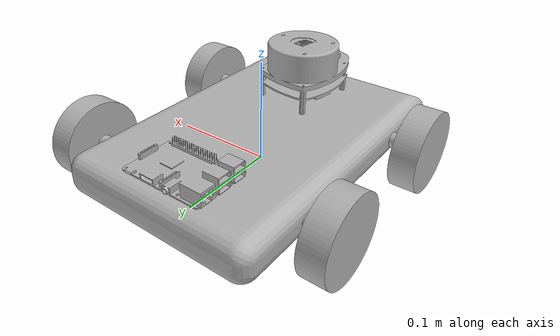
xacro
<?xml version="1.0" ?>
<robot name="model2" xmlns:xacro="http://www.ros.org/wiki/xacro">

<xacro:include filename="$(find model2_description)/urdf/materials.xacro" />
<xacro:include filename="$(find model2_description)/urdf/model2.trans" />
<xacro:include filename="$(find model2_description)/urdf/model2.gazebo" />
<link name="base_link">
  <inertial>
    <origin rpy="0 0 0" xyz="-0.05112631661212105 -0.04209128804470993 0.055851502792134106"/>
    <mass value="2.4401366484132527"/>
    <inertia ixx="0.018016" ixy="-2.1e-05" ixz="0.0" iyy="0.008064" iyz="-0.0" izz="0.025459"/>
  </inertial>
  <visual>
    <origin rpy="0 0 0" xyz="0 0 0"/>
    <geometry>
      <mesh filename="package://model2_description/meshes/base_link.stl" scale="0.001 0.001 0.001"/>
    </geometry>
    <material name="silver"/>
  </visual>
  <collision>
    <origin rpy="0 0 0" xyz="0 0 0"/>
    <geometry>
      <mesh filename="package://model2_description/meshes/base_link.stl" scale="0.001 0.001 0.001"/>
    </geometry>
  </collision>
</link>

<link name="LW2_1">
  <inertial>
    <origin rpy="0 0 0" xyz="0.012500461452973108 4.4945557342579434e-07 -4.972078655948731e-07"/>
    <mass value="0.015079644737231002"/>
    <inertia ixx="1.2e-05" ixy="-0.0" ixz="0.0" iyy="7e-06" iyz="0.0" izz="7e-06"/>
  </inertial>
  <visual>
    <origin rpy="0 0 0" xyz="-0.063933 -0.053014 -0.055852"/>
    <geometry>
      <mesh filename="package://model2_description/meshes/LW2_1.stl" scale="0.001 0.001 0.001"/>
    </geometry>
    <material name="silver"/>
  </visual>
  <collision>
    <origin rpy="0 0 0" xyz="-0.063933 -0.053014 -0.055852"/>
    <geometry>
      <mesh filename="package://model2_description/meshes/LW2_1.stl" scale="0.001 0.001 0.001"/>
    </geometry>
  </collision>
</link>

<link name="LW1_1">
  <inertial>
    <origin rpy="0 0 0" xyz="0.012500461452972955 4.4945557343967213e-07 -4.972078657128343e-07"/>
    <mass value="0.015079644737231002"/>
    <inertia ixx="1.2e-05" ixy="-0.0" ixz="-0.0" iyy="7e-06" iyz="0.0" izz="7e-06"/>
  </inertial>
  <visual>
    <origin rpy="0 0 0" xyz="-0.063933 0.121986 -0.055852"/>
    <geometry>
      <mesh filename="package://model2_description/meshes/LW1_1.stl" scale="0.001 0.001 0.001"/>
    </geometry>
    <material name="silver"/>
  </visual>
  <collision>
    <origin rpy="0 0 0" xyz="-0.063933 0.121986 -0.055852"/>
    <geometry>
      <mesh filename="package://model2_description/meshes/LW1_1.stl" scale="0.001 0.001 0.001"/>
    </geometry>
  </collision>
</link>

<link name="RW1_1">
  <inertial>
    <origin rpy="0 0 0" xyz="-0.012499538547027178 4.4945557350906107e-07 -4.972078658169177e-07"/>
    <mass value="0.015079644737231002"/>
    <inertia ixx="1.2e-05" ixy="0.0" ixz="-0.0" iyy="7e-06" iyz="-0.0" izz="7e-06"/>
  </inertial>
  <visual>
    <origin rpy="0 0 0" xyz="0.166067 0.119481 -0.055852"/>
    <geometry>
      <mesh filename="package://model2_description/meshes/RW1_1.stl" scale="0.001 0.001 0.001"/>
    </geometry>
    <material name="silver"/>
  </visual>
  <collision>
    <origin rpy="0 0 0" xyz="0.166067 0.119481 -0.055852"/>
    <geometry>
      <mesh filename="package://model2_description/meshes/RW1_1.stl" scale="0.001 0.001 0.001"/>
    </geometry>
  </collision>
</link>

<link name="RW2_1">
  <inertial>
    <origin rpy="0 0 0" xyz="-0.012499538547026928 4.494555732002803e-07 -4.972078654144618e-07"/>
    <mass value="0.015079644737231002"/>
    <inertia ixx="1.2e-05" ixy="-0.0" ixz="-0.0" iyy="7e-06" iyz="0.0" izz="7e-06"/>
  </inertial>
  <visual>
    <origin rpy="0 0 0" xyz="0.166067 -0.030519 -0.055852"/>
    <geometry>
      <mesh filename="package://model2_description/meshes/RW2_1.stl" scale="0.001 0.001 0.001"/>
    </geometry>
    <material name="silver"/>
  </visual>
  <collision>
    <origin rpy="0 0 0" xyz="0.166067 -0.030519 -0.055852"/>
    <geometry>
      <mesh filename="package://model2_description/meshes/RW2_1.stl" scale="0.001 0.001 0.001"/>
    </geometry>
  </collision>
</link>

<link name="rpi_1">
  <inertial>
    <origin rpy="0 0 0" xyz="0.036100988933240416 0.013239457820659647 -0.030962666526948707"/>
    <mass value="0.13472167579144426"/>
    <inertia ixx="4.1e-05" ixy="-0.0" ixz="9e-06" iyy="8.3e-05" iyz="-0.0" izz="0.000118"/>
  </inertial>
  <visual>
    <origin rpy="0 0 0" xyz="0.102133 -0.051039 -0.111703"/>
    <geometry>
      <mesh filename="package://model2_description/meshes/rpi_1.stl" scale="0.001 0.001 0.001"/>
    </geometry>
    <material name="silver"/>
  </visual>
  <collision>
    <origin rpy="0 0 0" xyz="0.102133 -0.051039 -0.111703"/>
    <geometry>
      <mesh filename="package://model2_description/meshes/rpi_1.stl" scale="0.001 0.001 0.001"/>
    </geometry>
  </collision>
</link>

<link name="Lidar_1">
  <inertial>
    <origin rpy="0 0 0" xyz="0.050752136043094864 0.10073220284855068 -0.0005833694750250612"/>
    <mass value="1.339299707757658"/>
    <inertia ixx="0.000957" ixy="-5.9e-05" ixz="-3.1e-05" iyy="0.000629" iyz="-0.000156" izz="0.001105"/>
  </inertial>
  <visual>
    <origin rpy="0 0 0" xyz="0.102133 0.218981 -0.111703"/>
    <geometry>
      <mesh filename="package://model2_description/meshes/Lidar_1.stl" scale="0.001 0.001 0.001"/>
    </geometry>
    <material name="silver"/>
  </visual>
  <collision>
    <origin rpy="0 0 0" xyz="0.102133 0.218981 -0.111703"/>
    <geometry>
      <mesh filename="package://model2_description/meshes/Lidar_1.stl" scale="0.001 0.001 0.001"/>
    </geometry>
  </collision>
</link>

<link name="shaft2_2_1">
  <inertial>
    <origin rpy="0 0 0" xyz="0.04356646145297316 0.12198544945596532 -0.03585149720786546"/>
    <mass value="0.0028097619295544313"/>
    <inertia ixx="0.0" ixy="-0.0" ixz="-0.0" iyy="0.0" iyz="0.0" izz="0.0"/>
  </inertial>
  <visual>
    <origin rpy="0 0 0" xyz="0.202133 0.091466 -0.091703"/>
    <geometry>
      <mesh filename="package://model2_description/meshes/shaft2_2_1.stl" scale="0.001 0.001 0.001"/>
    </geometry>
    <material name="silver"/>
  </visual>
  <collision>
    <origin rpy="0 0 0" xyz="0.202133 0.091466 -0.091703"/>
    <geometry>
      <mesh filename="package://model2_description/meshes/shaft2_2_1.stl" scale="0.001 0.001 0.001"/>
    </geometry>
  </collision>
</link>

<link name="shaft1_1">
  <inertial>
    <origin rpy="0 0 0" xyz="0.05856646145297294 -0.03801455054403438 -0.03585149720786574"/>
    <mass value="0.0028097619295544326"/>
    <inertia ixx="0.0" ixy="0.0" ixz="-0.0" iyy="0.0" iyz="0.0" izz="0.0"/>
  </inertial>
  <visual>
    <origin rpy="0 0 0" xyz="0.002133 0.083971 -0.091703"/>
    <geometry>
      <mesh filename="package://model2_description/meshes/shaft1_1.stl" scale="0.001 0.001 0.001"/>
    </geometry>
    <material name="silver"/>
  </visual>
  <collision>
    <origin rpy="0 0 0" xyz="0.002133 0.083971 -0.091703"/>
    <geometry>
      <mesh filename="package://model2_description/meshes/shaft1_1.stl" scale="0.001 0.001 0.001"/>
    </geometry>
  </collision>
</link>

<link name="shaft1_1_1">
  <inertial>
    <origin rpy="0 0 0" xyz="0.05856646145297303 0.13698544945596558 -0.03585149720786558"/>
    <mass value="0.0028097619295544313"/>
    <inertia ixx="0.0" ixy="0.0" ixz="0.0" iyy="0.0" iyz="0.0" izz="0.0"/>
  </inertial>
  <visual>
    <origin rpy="0 0 0" xyz="0.002133 0.083971 -0.091703"/>
    <geometry>
      <mesh filename="package://model2_description/meshes/shaft1_1_1.stl" scale="0.001 0.001 0.001"/>
    </geometry>
    <material name="silver"/>
  </visual>
  <collision>
    <origin rpy="0 0 0" xyz="0.002133 0.083971 -0.091703"/>
    <geometry>
      <mesh filename="package://model2_description/meshes/shaft1_1_1.stl" scale="0.001 0.001 0.001"/>
    </geometry>
  </collision>
</link>

<link name="shaft2_1">
  <inertial>
    <origin rpy="0 0 0" xyz="0.043566461452972965 -0.02801455054403436 -0.035851497207865846"/>
    <mass value="0.0028097619295544326"/>
    <inertia ixx="0.0" ixy="-0.0" ixz="-0.0" iyy="0.0" iyz="-0.0" izz="0.0"/>
  </inertial>
  <visual>
    <origin rpy="0 0 0" xyz="0.202133 0.091466 -0.091703"/>
    <geometry>
      <mesh filename="package://model2_description/meshes/shaft2_1.stl" scale="0.001 0.001 0.001"/>
    </geometry>
    <material name="silver"/>
  </visual>
  <collision>
    <origin rpy="0 0 0" xyz="0.202133 0.091466 -0.091703"/>
    <geometry>
      <mesh filename="package://model2_description/meshes/shaft2_1.stl" scale="0.001 0.001 0.001"/>
    </geometry>
  </collision>
</link>

<joint name="Rev15" type="continuous">
  <origin rpy="0 0 0" xyz="0.066066 0.136985 -0.035851"/>
  <parent link="shaft1_1_1"/>
  <child link="LW2_1"/>
  <axis xyz="1.0 -0.0 0.0"/>
</joint>

<joint name="Rev16" type="continuous">
  <origin rpy="0 0 0" xyz="0.066066 -0.038015 -0.035851"/>
  <parent link="shaft1_1"/>
  <child link="LW1_1"/>
  <axis xyz="1.0 -0.0 0.0"/>
</joint>

<joint name="Rev17" type="continuous">
  <origin rpy="0 0 0" xyz="0.036066 -0.028015 -0.035851"/>
  <parent link="shaft2_1"/>
  <child link="RW1_1"/>
  <axis xyz="-1.0 -0.0 0.0"/>
</joint>

<joint name="Rev18" type="continuous">
  <origin rpy="0 0 0" xyz="0.036066 0.121985 -0.035851"/>
  <parent link="shaft2_2_1"/>
  <child link="RW2_1"/>
  <axis xyz="-1.0 0.0 0.0"/>
</joint>

<joint name="Rigid19" type="fixed">
  <origin rpy="0 0 0" xyz="-0.102133 0.051039 0.111703"/>
  <parent link="base_link"/>
  <child link="rpi_1"/>
</joint>

<joint name="Rigid20" type="fixed">
  <origin rpy="0 0 0" xyz="-0.102133 -0.218981 0.111703"/>
  <parent link="base_link"/>
  <child link="Lidar_1"/>
</joint>

<joint name="Rigid21" type="fixed">
  <origin rpy="0 0 0" xyz="-0.202133 -0.091466 0.091703"/>
  <parent link="base_link"/>
  <child link="shaft2_2_1"/>
</joint>

<joint name="Rigid22" type="fixed">
  <origin rpy="0 0 0" xyz="-0.002133 -0.083971 0.091703"/>
  <parent link="base_link"/>
  <child link="shaft1_1"/>
</joint>

<joint name="Rigid23" type="fixed">
  <origin rpy="0 0 0" xyz="-0.002133 -0.083971 0.091703"/>
  <parent link="base_link"/>
  <child link="shaft1_1_1"/>
</joint>

<joint name="Rigid24" type="fixed">
  <origin rpy="0 0 0" xyz="-0.202133 -0.091466 0.091703"/>
  <parent link="base_link"/>
  <child link="shaft2_1"/>
</joint>

</robot>

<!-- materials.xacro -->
<robot name="model2" xmlns:xacro="http://www.ros.org/wiki/xacro" >

<material name="silver">
  <color rgba="0.700 0.700 0.700 1.000"/>
</material>

</robot>

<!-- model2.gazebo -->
<robot name="model2" xmlns:xacro="http://www.ros.org/wiki/xacro" >

<xacro:property name="body_color" value="Gazebo/Silver" />

<gazebo>
  <plugin filename="libgazebo_ros_control.so" name="control"/>
</gazebo>
<gazebo reference="base_link">
  <material>${body_color}</material>
  <mu1>0.2</mu1>
  <mu2>0.2</mu2>
  <selfCollide>true</selfCollide>
  <gravity>true</gravity>
</gazebo>

<gazebo reference="LW2_1">
  <material>${body_color}</material>
  <mu1>0.2</mu1>
  <mu2>0.2</mu2>
  <selfCollide>true</selfCollide>
</gazebo>

<gazebo reference="LW1_1">
  <material>${body_color}</material>
  <mu1>0.2</mu1>
  <mu2>0.2</mu2>
  <selfCollide>true</selfCollide>
</gazebo>

<gazebo reference="RW1_1">
  <material>${body_color}</material>
  <mu1>0.2</mu1>
  <mu2>0.2</mu2>
  <selfCollide>true</selfCollide>
</gazebo>

<gazebo reference="RW2_1">
  <material>${body_color}</material>
  <mu1>0.2</mu1>
  <mu2>0.2</mu2>
  <selfCollide>true</selfCollide>
</gazebo>

<gazebo reference="rpi_1">
  <material>${body_color}</material>
  <mu1>0.2</mu1>
  <mu2>0.2</mu2>
  <selfCollide>true</selfCollide>
</gazebo>

<gazebo reference="Lidar_1">
  <material>${body_color}</material>
  <mu1>0.2</mu1>
  <mu2>0.2</mu2>
  <selfCollide>true</selfCollide>
</gazebo>

<gazebo reference="shaft2_2_1">
  <material>${body_color}</material>
  <mu1>0.2</mu1>
  <mu2>0.2</mu2>
  <selfCollide>true</selfCollide>
</gazebo>

<gazebo reference="shaft1_1">
  <material>${body_color}</material>
  <mu1>0.2</mu1>
  <mu2>0.2</mu2>
  <selfCollide>true</selfCollide>
</gazebo>

<gazebo reference="shaft1_1_1">
  <material>${body_color}</material>
  <mu1>0.2</mu1>
  <mu2>0.2</mu2>
  <selfCollide>true</selfCollide>
</gazebo>

<gazebo reference="shaft2_1">
  <material>${body_color}</material>
  <mu1>0.2</mu1>
  <mu2>0.2</mu2>
  <selfCollide>true</selfCollide>
</gazebo>

</robot>
